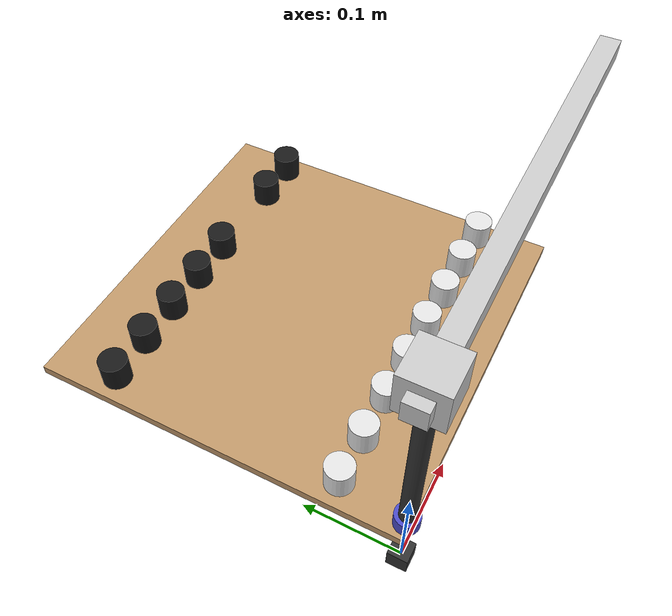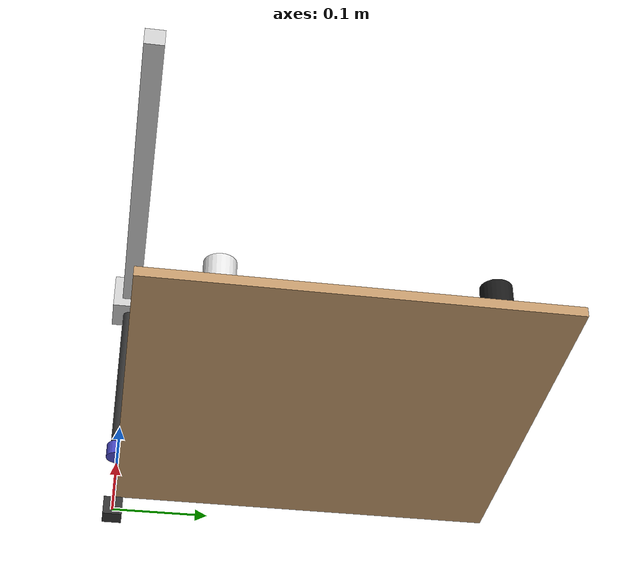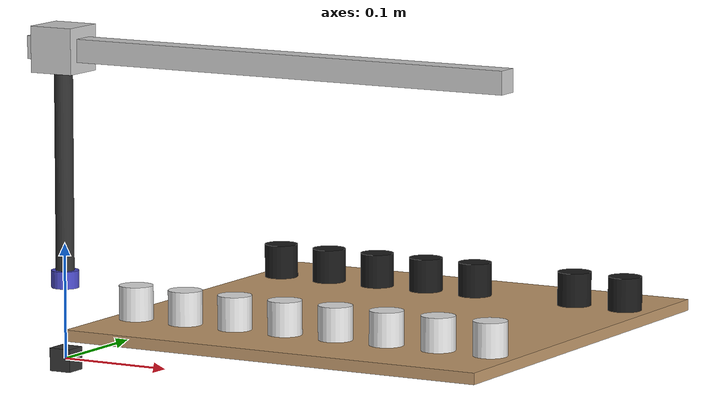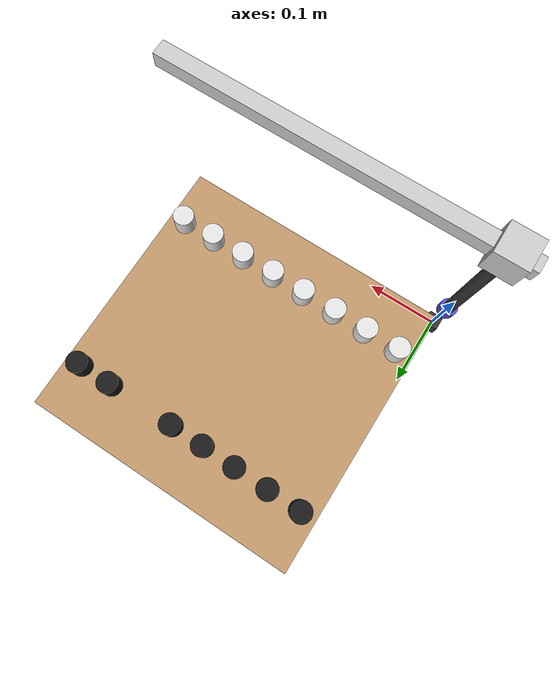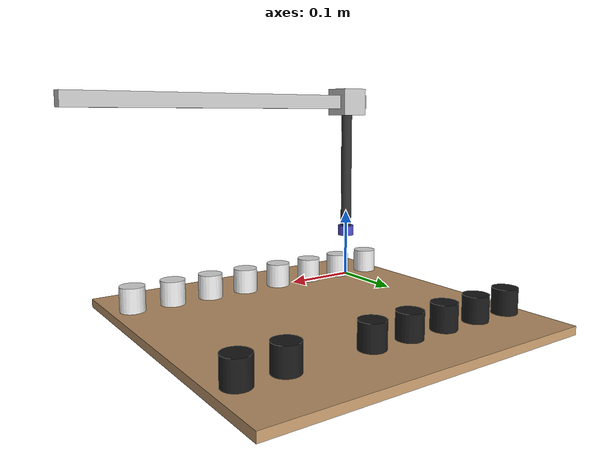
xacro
<?xml version="1.0"?>
<robot xmlns:xacro="http://www.ros.org/wiki/xacro" name="chess_robot">

  <xacro:property name="square_size" value="0.05"/>   <!-- 5 cm per square -->
  <xacro:property name="board_size"  value="0.40"/>   <!-- 8 × 5 cm = 40 cm -->
  <xacro:property name="board_z"     value="0.02"/>   <!-- board sits 2 cm off ground -->
  <xacro:property name="gantry_h"    value="0.25"/>   <!-- rails 25 cm above board -->
  <xacro:property name="arm_len"     value="0.20"/>   <!-- Z-axis travel 20 cm -->

  <!-- ============================================================
       World / base_link
       ============================================================ -->
  <link name="world"/>

  <link name="base_link">
    <visual>
      <geometry><box size="0.02 0.02 0.02"/></geometry>
      <material name="dark_gray"><color rgba="0.2 0.2 0.2 1"/></material>
    </visual>
  </link>
  <joint name="world_to_base" type="fixed">
    <parent link="world"/>
    <child  link="base_link"/>
    <origin xyz="0 0 0" rpy="0 0 0"/>
  </joint>

  <link name="chess_board">
    <visual>
      <origin xyz="${board_size/2} ${board_size/2} 0" rpy="0 0 0"/>
      <geometry><box size="${board_size} ${board_size} 0.01"/></geometry>
      <material name="board_color"><color rgba="0.76 0.60 0.42 1"/></material>
    </visual>
    <collision>
      <origin xyz="${board_size/2} ${board_size/2} 0"/>
      <geometry><box size="${board_size} ${board_size} 0.01"/></geometry>
    </collision>
    <inertial>
      <mass value="0.5"/>
      <inertia ixx="0.01" iyy="0.01" izz="0.01" ixy="0" ixz="0" iyz="0"/>
    </inertial>
  </link>
  <joint name="base_to_board" type="fixed">
    <parent link="base_link"/>
    <child  link="chess_board"/>
    <origin xyz="0 0 ${board_z}" rpy="0 0 0"/>
  </joint>

  <link name="x_rail">
    <visual>
      <origin xyz="${board_size/2} 0 0"/>
      <geometry><box size="${board_size + 0.06} 0.02 0.02"/></geometry>
      <material name="aluminum"><color rgba="0.8 0.8 0.8 1"/></material>
    </visual>
    <inertial>
      <mass value="0.3"/>
      <inertia ixx="0.001" iyy="0.001" izz="0.001" ixy="0" ixz="0" iyz="0"/>
    </inertial>
  </link>
  <joint name="gantry_x" type="prismatic">
    <parent link="chess_board"/>
    <child  link="x_rail"/>
    <!-- rail slides along Y (ranks 1–8) -->
    <origin xyz="0 0 ${gantry_h}" rpy="0 0 0"/>
    <axis xyz="0 1 0"/>
    <limit lower="0" upper="${board_size}" effort="10" velocity="0.2"/>
    <dynamics damping="0.5"/>
  </joint>

  <!-- ============================================================
       Gantry: Y carriage (slides along x_rail)
       ============================================================ -->
  <link name="y_carriage">
    <visual>
      <geometry><box size="0.04 0.04 0.04"/></geometry>
      <material name="aluminum"/>
    </visual>
    <inertial>
      <mass value="0.1"/>
      <inertia ixx="0.0001" iyy="0.0001" izz="0.0001" ixy="0" ixz="0" iyz="0"/>
    </inertial>
  </link>
  <joint name="gantry_y" type="prismatic">
    <parent link="x_rail"/>
    <child  link="y_carriage"/>
    <origin xyz="0 0 0" rpy="0 0 0"/>
    <axis xyz="1 0 0"/>
    <limit lower="0" upper="${board_size}" effort="10" velocity="0.2"/>
    <dynamics damping="0.5"/>
  </joint>

  <!-- ============================================================
       Z arm (lowers to pick / place pieces)
       ============================================================ -->
  <link name="z_arm">
    <visual>
      <origin xyz="0 0 ${-arm_len/2}"/>
      <geometry><cylinder radius="0.008" length="${arm_len}"/></geometry>
      <material name="dark_gray"/>
    </visual>
    <inertial>
      <mass value="0.05"/>
      <inertia ixx="0.00001" iyy="0.00001" izz="0.00001" ixy="0" ixz="0" iyz="0"/>
    </inertial>
  </link>
  <joint name="gantry_z" type="prismatic">
    <parent link="y_carriage"/>
    <child  link="z_arm"/>
    <origin xyz="0 0 0" rpy="0 0 0"/>
    <axis xyz="0 0 -1"/>
    <limit lower="0" upper="${arm_len}" effort="5" velocity="0.1"/>
    <dynamics damping="0.3"/>
  </joint>

  <!-- ============================================================
       End-effector (electromagnet)
       ============================================================ -->
  <link name="end_effector">
    <visual>
      <geometry><cylinder radius="0.012" length="0.015"/></geometry>
      <material name="magnet"><color rgba="0.3 0.3 0.8 1"/></material>
    </visual>
    <inertial>
      <mass value="0.02"/>
      <inertia ixx="0.000001" iyy="0.000001" izz="0.000001" ixy="0" ixz="0" iyz="0"/>
    </inertial>
  </link>
  <joint name="arm_to_effector" type="fixed">
    <parent link="z_arm"/>
    <child  link="end_effector"/>
    <origin xyz="0 0 ${-arm_len}" rpy="0 0 0"/>
  </joint>

  <!-- ============================================================
       Sample chess piece (pawn — reuse with xacro:macro for all)
       ============================================================ -->
  <xacro:macro name="pawn" params="name x y color_rgba">
    <link name="${name}">
      <visual>
        <geometry><cylinder radius="0.015" length="0.030"/></geometry>
        <material name="${name}_mat"><color rgba="${color_rgba}"/></material>
      </visual>
      <collision>
        <geometry><cylinder radius="0.015" length="0.030"/></geometry>
      </collision>
      <inertial>
        <mass value="0.03"/>
        <inertia ixx="0.000001" iyy="0.000001" izz="0.000001" ixy="0" ixz="0" iyz="0"/>
      </inertial>
    </link>
    <joint name="${name}_joint" type="fixed">
      <parent link="chess_board"/>
      <child  link="${name}"/>
      <origin xyz="${x} ${y} 0.020" rpy="0 0 0"/>
    </joint>
  </xacro:macro>

  <!-- White pawns on rank 2 (y = 1.5 * square_size) -->
  <xacro:pawn name="wp_a2" x="${0.5*square_size}" y="${1.5*square_size}" color_rgba="0.9 0.9 0.9 1"/>
  <xacro:pawn name="wp_b2" x="${1.5*square_size}" y="${1.5*square_size}" color_rgba="0.9 0.9 0.9 1"/>
  <xacro:pawn name="wp_c2" x="${2.5*square_size}" y="${1.5*square_size}" color_rgba="0.9 0.9 0.9 1"/>
  <xacro:pawn name="wp_d2" x="${3.5*square_size}" y="${1.5*square_size}" color_rgba="0.9 0.9 0.9 1"/>
  <xacro:pawn name="wp_e2" x="${4.5*square_size}" y="${1.5*square_size}" color_rgba="0.9 0.9 0.9 1"/>
  <xacro:pawn name="wp_f2" x="${5.5*square_size}" y="${1.5*square_size}" color_rgba="0.9 0.9 0.9 1"/>
  <xacro:pawn name="wp_g2" x="${6.5*square_size}" y="${1.5*square_size}" color_rgba="0.9 0.9 0.9 1"/>
  <xacro:pawn name="wp_h2" x="${7.5*square_size}" y="${1.5*square_size}" color_rgba="0.9 0.9 0.9 1"/>

  <!-- Black pawns on rank 7 (y = 6.5 * square_size) -->
  <xacro:pawn name="bp_a7" x="${0.5*square_size}" y="${6.5*square_size}" color_rgba="0.1 0.1 0.1 1"/>
  <xacro:pawn name="bp_b7" x="${1.5*square_size}" y="${6.5*square_size}" color_rgba="0.1 0.1 0.1 1"/>
  <xacro:pawn name="bp_c7" x="${2.5*square_size}" y="${6.5*square_size}" color_rgba="0.1 0.1 0.1 1"/>
  <xacro:pawn name="bp_d7" x="${3.5*square_size}" y="${6.5*square_size}" color_rgba="0.1 0.1 0.1 1"/>
  <xacro:pawn name="bp_e7" x="${4.5*square_size}" y="${6.5*square_size}" color_rgba="0.1 0.1 0.1 1"/>
  <xacro:pawn name="bp_f7" x="${6.5*square_size}" y="${6.5*square_size}" color_rgba="0.1 0.1 0.1 1"/>
  <xacro:pawn name="bp_g7" x="${6.5*square_size}" y="${6.5*square_size}" color_rgba="0.1 0.1 0.1 1"/>
  <xacro:pawn name="bp_h7" x="${7.5*square_size}" y="${6.5*square_size}" color_rgba="0.1 0.1 0.1 1"/>

</robot>
